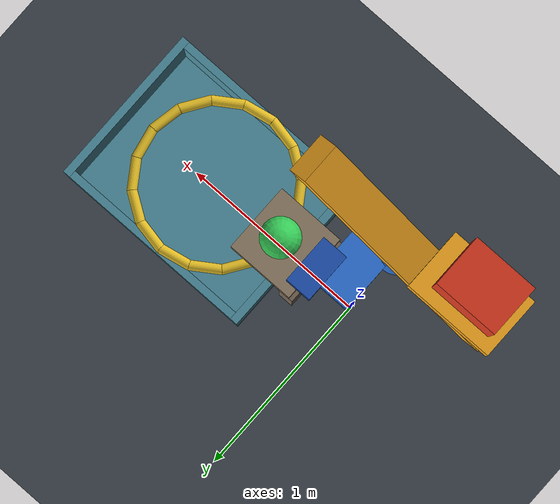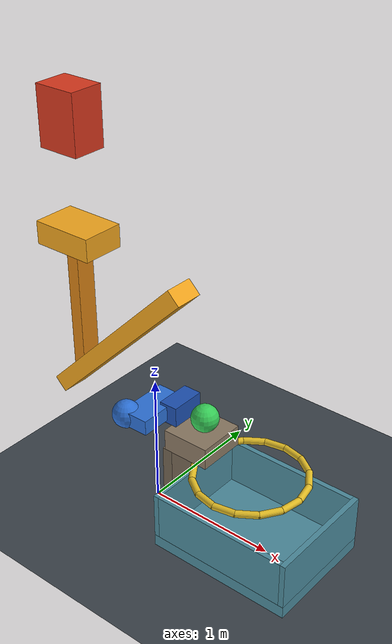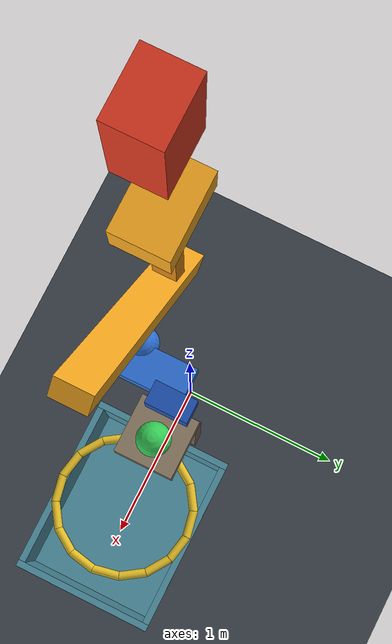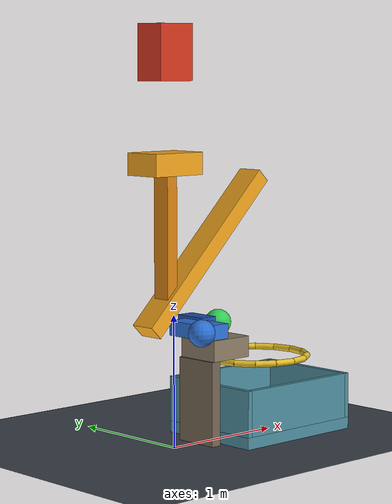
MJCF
<mujoco model="trigger_wedge_cart_drop">
  <compiler angle="degree" autolimits="true"/>
  <option timestep="0.002" gravity="0 0 -9.81" integrator="implicitfast" cone="elliptic" iterations="80"/>
  <size njmax="1000" nconmax="300"/>

  <visual>
    <global azimuth="135" elevation="-22"/>
    <headlight ambient="0.4 0.4 0.4" diffuse="0.7 0.7 0.7" specular="0.2 0.2 0.2"/>
  </visual>

  <worldbody>
    <light name="overhead" pos="0 -2 5" dir="0 0 -1"/>
    <camera name="overview" pos="3 -5 3" xyaxes="0.857 0.514 0 -0.185 0.309 0.933"/>

    <geom name="floor" type="plane" size="4 3 0.1" pos="0 0 0" contype="1" conaffinity="10" condim="6" friction="0.9 0.02 0.03" rgba="0.23 0.26 0.29 1"/>

    <!-- The trigger's bottom starts exactly 0.5 m above the horizontal anvil. -->
    <body name="trigger" pos="-0.35 -0.30 2.93">
      <freejoint name="trigger_free"/>
      <geom name="trigger_weight" type="box" size="0.15 0.12 0.20" mass="12" contype="2" conaffinity="5" condim="3" friction="0.7 0.005 0.001" solref="0.008 1" rgba="0.85 0.22 0.12 1"/>
    </body>

    <!-- Gravity compensation holds the unloaded wedge at its initial height. -->
    <!-- Its ascending ramp pushes the follower right as the wedge descends. -->
    <body name="wedge" pos="0 -0.30 1.50" gravcomp="1">
      <joint name="wedge_vertical" type="slide" axis="0 0 1" range="-0.90 0" stiffness="60" springref="0" damping="180"/>
      <geom name="wedge_ramp" type="box" size="0.75 0.10 0.06" quat="0.923879533 0 -0.382683432 0" mass="1.5" contype="4" conaffinity="18" condim="3" friction="0.02 0.001 0.001" solref="0.006 1" rgba="0.95 0.65 0.12 1"/>
      <geom name="wedge_post" type="box" pos="-0.35 0 0.10" size="0.045 0.07 0.48" mass="0.2" contype="4" conaffinity="2" friction="0.6 0.005 0.001" rgba="0.85 0.51 0.08 1"/>
      <geom name="wedge_anvil" type="box" pos="-0.35 0 0.65" size="0.22 0.15 0.08" mass="0.3" contype="4" conaffinity="2" friction="0.7 0.005 0.001" solref="0.008 1" rgba="0.95 0.65 0.12 1"/>
    </body>

    <!-- The follower is offset behind the ledge; the striker reaches the payload. -->
    <body name="cart" pos="0 -0.30 0.90">
      <joint name="cart_sideways" type="slide" axis="1 0 0" range="0 0.60" damping="18"/>
      <geom name="cart_follower" type="sphere" size="0.10" mass="0.3" contype="16" conaffinity="4" condim="3" friction="0.02 0.001 0.001" solref="0.006 1" rgba="0.18 0.45 0.85 1"/>
      <geom name="cart_chassis" type="box" pos="0.11 0.15 0" size="0.11 0.20 0.055" mass="0.4" contype="0" conaffinity="0" rgba="0.18 0.45 0.85 1"/>
      <geom name="cart_striker" type="box" pos="0.23 0.30 0" size="0.07 0.13 0.075" mass="0.3" contype="32" conaffinity="8" condim="6" friction="0.05 0.002 0.001" solref="0.006 1" rgba="0.12 0.32 0.70 1"/>
    </body>

    <!-- A spherical payload can roll off the ledge and settle inside the box. -->
    <body name="block" pos="0.45 0 0.90">
      <freejoint name="block_free"/>
      <geom name="block_ball" type="sphere" size="0.10" mass="0.35" contype="8" conaffinity="97" condim="6" friction="0.12 0.005 0.005" solref="0.008 1" rgba="0.22 0.82 0.35 1"/>
    </body>

    <body name="ledge" pos="0.42 0 0.72">
      <geom name="ledge_platform" type="box" size="0.18 0.18 0.08" contype="64" conaffinity="8" condim="6" friction="0.05 0.005 0.005" solref="0.008 1" rgba="0.55 0.48 0.39 1"/>
      <geom name="ledge_support" type="box" pos="-0.16 0 -0.40" size="0.04 0.18 0.32" contype="64" conaffinity="8" condim="6" friction="0.5 0.01 0.01" rgba="0.45 0.39 0.32 1"/>
    </body>

    <!-- Sixteen capsules form a horizontal hoop with an unobstructed opening. -->
    <body name="hoop" pos="0.85 0 0.60">
      <geom name="hoop_01" type="capsule" fromto="0.400000 0 0 0.369552 0.153073 0" size="0.025" contype="64" conaffinity="8" condim="6" friction="0.3 0.005 0.01" rgba="0.90 0.75 0.15 1"/>
      <geom name="hoop_02" type="capsule" fromto="0.369552 0.153073 0 0.282843 0.282843 0" size="0.025" contype="64" conaffinity="8" condim="6" friction="0.3 0.005 0.01" rgba="0.90 0.75 0.15 1"/>
      <geom name="hoop_03" type="capsule" fromto="0.282843 0.282843 0 0.153073 0.369552 0" size="0.025" contype="64" conaffinity="8" condim="6" friction="0.3 0.005 0.01" rgba="0.90 0.75 0.15 1"/>
      <geom name="hoop_04" type="capsule" fromto="0.153073 0.369552 0 0 0.400000 0" size="0.025" contype="64" conaffinity="8" condim="6" friction="0.3 0.005 0.01" rgba="0.90 0.75 0.15 1"/>
      <geom name="hoop_05" type="capsule" fromto="0 0.400000 0 -0.153073 0.369552 0" size="0.025" contype="64" conaffinity="8" condim="6" friction="0.3 0.005 0.01" rgba="0.90 0.75 0.15 1"/>
      <geom name="hoop_06" type="capsule" fromto="-0.153073 0.369552 0 -0.282843 0.282843 0" size="0.025" contype="64" conaffinity="8" condim="6" friction="0.3 0.005 0.01" rgba="0.90 0.75 0.15 1"/>
      <geom name="hoop_07" type="capsule" fromto="-0.282843 0.282843 0 -0.369552 0.153073 0" size="0.025" contype="64" conaffinity="8" condim="6" friction="0.3 0.005 0.01" rgba="0.90 0.75 0.15 1"/>
      <geom name="hoop_08" type="capsule" fromto="-0.369552 0.153073 0 -0.400000 0 0" size="0.025" contype="64" conaffinity="8" condim="6" friction="0.3 0.005 0.01" rgba="0.90 0.75 0.15 1"/>
      <geom name="hoop_09" type="capsule" fromto="-0.400000 0 0 -0.369552 -0.153073 0" size="0.025" contype="64" conaffinity="8" condim="6" friction="0.3 0.005 0.01" rgba="0.90 0.75 0.15 1"/>
      <geom name="hoop_10" type="capsule" fromto="-0.369552 -0.153073 0 -0.282843 -0.282843 0" size="0.025" contype="64" conaffinity="8" condim="6" friction="0.3 0.005 0.01" rgba="0.90 0.75 0.15 1"/>
      <geom name="hoop_11" type="capsule" fromto="-0.282843 -0.282843 0 -0.153073 -0.369552 0" size="0.025" contype="64" conaffinity="8" condim="6" friction="0.3 0.005 0.01" rgba="0.90 0.75 0.15 1"/>
      <geom name="hoop_12" type="capsule" fromto="-0.153073 -0.369552 0 0 -0.400000 0" size="0.025" contype="64" conaffinity="8" condim="6" friction="0.3 0.005 0.01" rgba="0.90 0.75 0.15 1"/>
      <geom name="hoop_13" type="capsule" fromto="0 -0.400000 0 0.153073 -0.369552 0" size="0.025" contype="64" conaffinity="8" condim="6" friction="0.3 0.005 0.01" rgba="0.90 0.75 0.15 1"/>
      <geom name="hoop_14" type="capsule" fromto="0.153073 -0.369552 0 0.282843 -0.282843 0" size="0.025" contype="64" conaffinity="8" condim="6" friction="0.3 0.005 0.01" rgba="0.90 0.75 0.15 1"/>
      <geom name="hoop_15" type="capsule" fromto="0.282843 -0.282843 0 0.369552 -0.153073 0" size="0.025" contype="64" conaffinity="8" condim="6" friction="0.3 0.005 0.01" rgba="0.90 0.75 0.15 1"/>
      <geom name="hoop_16" type="capsule" fromto="0.369552 -0.153073 0 0.400000 0 0" size="0.025" contype="64" conaffinity="8" condim="6" friction="0.3 0.005 0.01" rgba="0.90 0.75 0.15 1"/>
    </body>

    <body name="box" pos="0.90 0 0">
      <geom name="box_bottom" type="box" pos="0 0 0.045" size="0.55 0.43 0.045" contype="64" conaffinity="8" condim="6" friction="0.9 0.02 0.03" solref="0.012 1" rgba="0.30 0.55 0.62 1"/>
      <geom name="box_left" type="box" pos="-0.53 0 0.265" size="0.02 0.43 0.175" contype="64" conaffinity="8" condim="6" friction="0.9 0.02 0.03" solref="0.012 1" rgba="0.30 0.55 0.62 1"/>
      <geom name="box_right" type="box" pos="0.53 0 0.265" size="0.02 0.43 0.175" contype="64" conaffinity="8" condim="6" friction="0.9 0.02 0.03" solref="0.012 1" rgba="0.30 0.55 0.62 1"/>
      <geom name="box_front" type="box" pos="0 -0.41 0.265" size="0.51 0.02 0.175" contype="64" conaffinity="8" condim="6" friction="0.9 0.02 0.03" solref="0.012 1" rgba="0.30 0.55 0.62 1"/>
      <geom name="box_back" type="box" pos="0 0.41 0.265" size="0.51 0.02 0.175" contype="64" conaffinity="8" condim="6" friction="0.9 0.02 0.03" solref="0.012 1" rgba="0.30 0.55 0.62 1"/>
    </body>
  </worldbody>

  <keyframe>
    <key name="start" qpos="-0.35 -0.30 2.93 1 0 0 0 0 0 0.45 0 0.90 1 0 0 0"/>
  </keyframe>
</mujoco>
